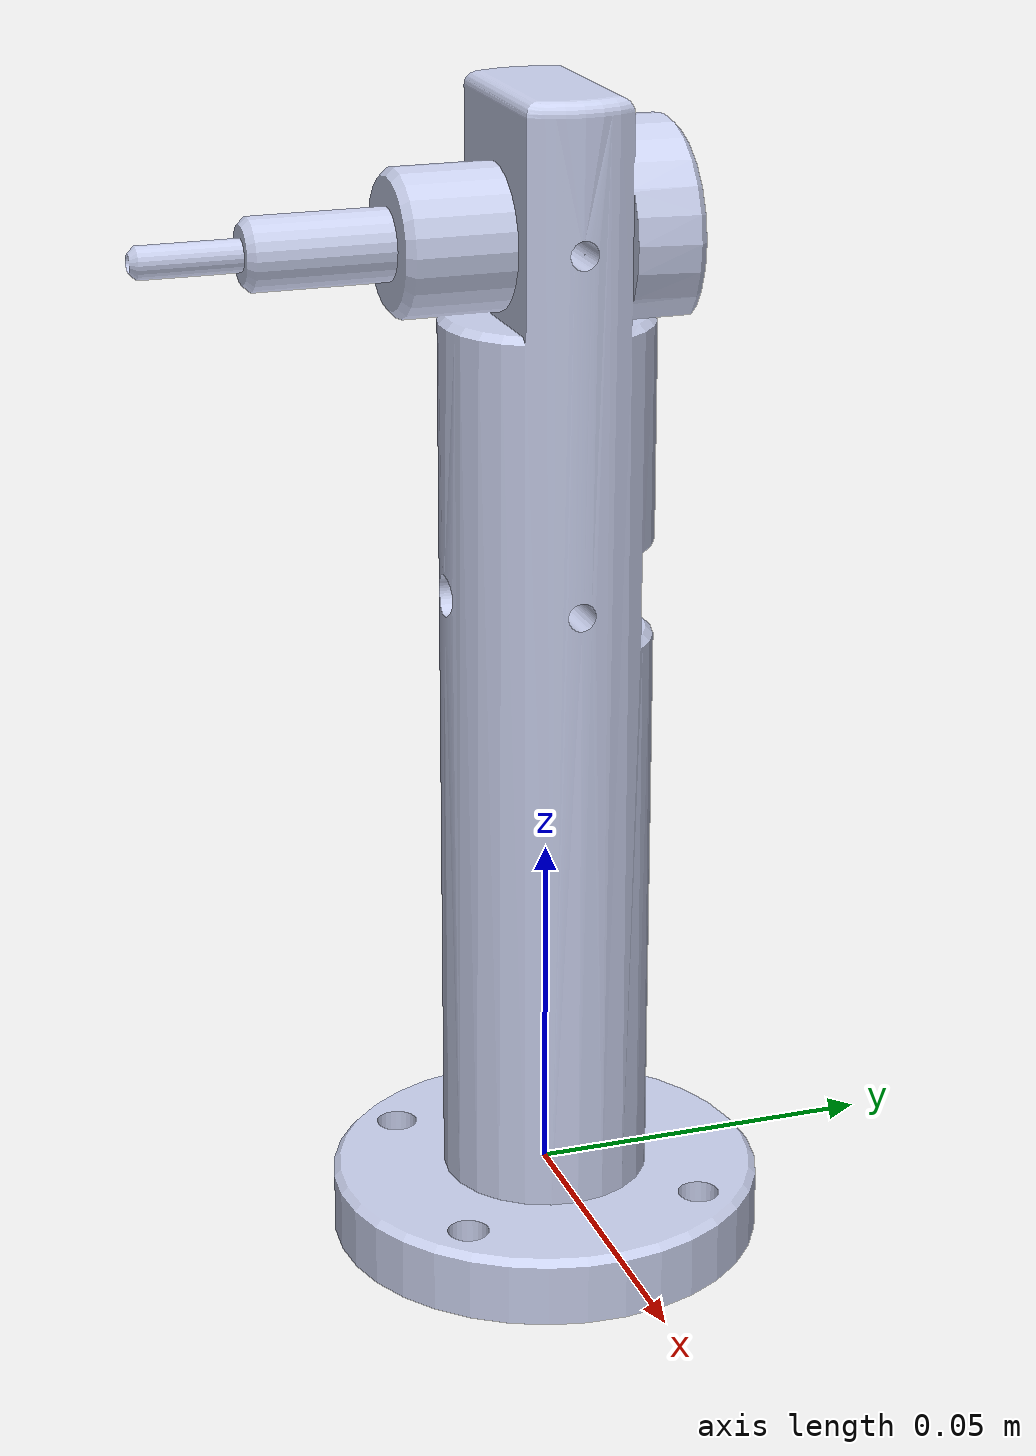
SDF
<?xml version="1.0" ?>
<sdf version="1.6">
    <model name="black_and_decker_cordless_drill">
        <static>true</static>
        <link name="link">
            <collision name="collision">
                <geometry>
                    <mesh>
                        <uri>model://drill/meshes/drill.dae</uri>
                    </mesh>
                </geometry>
            </collision>
            <visual name="visual">
                <geometry>
                    <mesh>
                        <uri>model://drill/meshes/drill.dae</uri>
                    </mesh>
                </geometry>
            </visual>
        </link>
  <plugin name="gz::sim::systems::Label" filename="gz-sim-label-system">
    <label>1</label>
  </plugin>
    </model>
</sdf>
